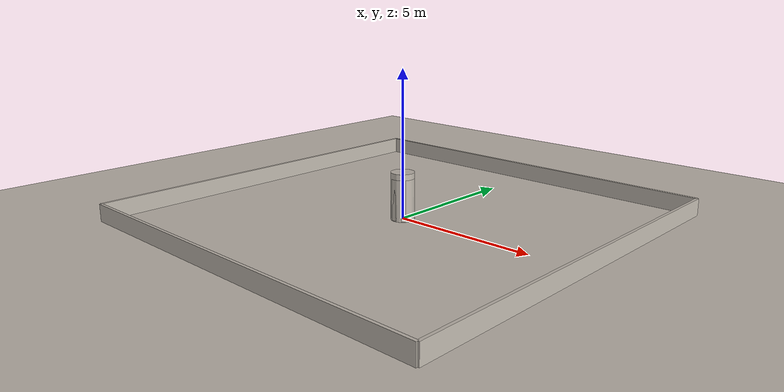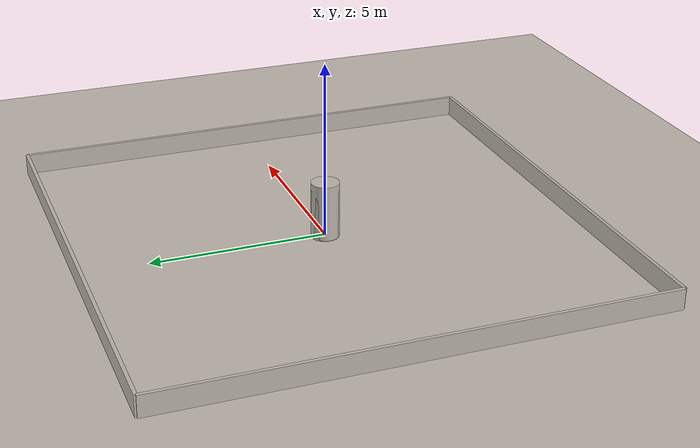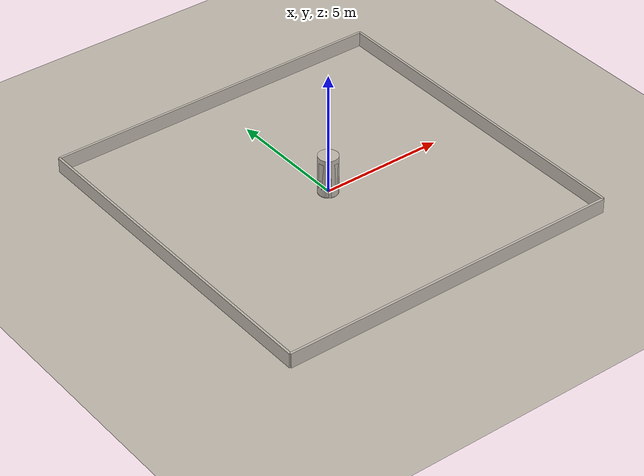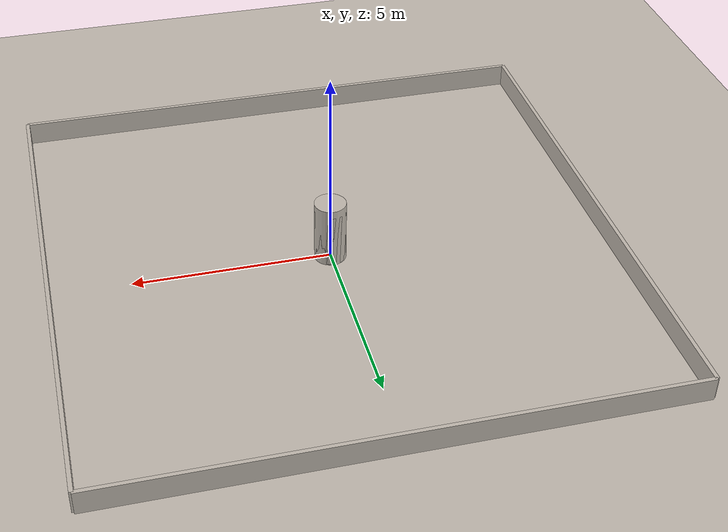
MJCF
<mujoco model="two_wheel_two_cams">
  <option timestep="0.002" gravity="0 0 -9.81" />
  <size nstack="300000" nuser_sensor="0" />
  <visual>
    <map znear="0.001" />
  </visual>
  <asset>
    <texture name="skybox" type="skybox" file="textures/skybox.png" />
    <texture name="texplane" type="2d" file="textures/ground.png" />
    <texture name="texwall" type="cube" file="textures/wall.png" />
    <texture name="texobs" type="cube" file="textures/obstacle.png" />
    <material name="matplane" texture="texplane" texrepeat="1 1" reflectance="0.0" texuniform="true" rgba="1 1 1 1" specular="0.05" />
    <material name="matgoal" rgba="0.2 0.85 0.2 1" />
    <!-- Texuniform=false lets the texture map onto the box faces rather than world planes -->
    <material name="matwall" texture="texwall" texrepeat="4 4" reflectance="0.0" texuniform="false" rgba="1 1 1 1" specular="0.05" />
    <material name="matrobot" rgba="0.2 0.4 0.8 1" />
    <material name="matwheel" rgba="0.1 0.1 0.1 1" />
    <!-- Texuniform=false ensures the texture wraps around the cylinder's circumference -->
    <material name="matobs" texture="texobs" texrepeat="1 1" reflectance="0.0" texuniform="false" rgba="1 1 1 1" specular="0.05" />
  </asset>
  <worldbody>
    <light name="light_top" pos="0 0 6" dir="0 0 -1" diffuse="0.3 0.3 0.3" specular="0.0 0.0 0.0" ambient="0.6 0.6 0.6" directional="true" castshadow="false"/>
    <light name="light_west" pos="-4 0 3" dir="1 0 -0.4" diffuse="0.1 0.1 0.1" specular="0.0 0.0 0.0" ambient="0.3 0.3 0.3" directional="true" castshadow="false"/>
    <light name="light_east" pos="4 0 3" dir="-1 0 -0.4" diffuse="0.1 0.1 0.1" specular="0.0 0.0 0.0" ambient="0.3 0.3 0.3" directional="true" castshadow="false"/>
    <geom name="floor" type="plane" size="20 20 0.1" pos="0 0 0" material="matplane" condim="3" friction="1.0 0.005 0.0001" contype="1" conaffinity="7" />
    <geom name="wall_n" type="box" size="7 0.05 0.3" pos="0 7 0.3" material="matwall" contype="1" conaffinity="7" />
    <geom name="wall_s" type="box" size="7 0.05 0.3" pos="0 -7 0.3" material="matwall" contype="1" conaffinity="7" />
    <geom name="wall_e" type="box" size="0.05 7 0.3" pos="7 0 0.3" material="matwall" contype="1" conaffinity="7" />
    <geom name="wall_w" type="box" size="0.05 7 0.3" pos="-7 0 0.3" material="matwall" contype="1" conaffinity="7" />
    <body name="obstacle0_body" pos="0 0 0.8">
      <inertial pos="0 0 0" mass="30" diaginertia="2 2 2" />
      <joint name="obstacle0_x" type="slide" axis="1 0 0" limited="true" range="-1e-6 1e-6" />
      <joint name="obstacle0_y" type="slide" axis="0 1 0" limited="true" range="-1e-6 1e-6" />
      <joint name="obstacle0_z" type="slide" axis="0 0 1" limited="true" range="-1e-6 1e-6" />
      <geom name="obstacle0" type="cylinder" size="0.4 0.8 0" pos="0 0 0" friction="8.0 0.5 0.1" material="matobs" contype="1" conaffinity="7" solref="0.001 1" solimp="0.98 0.995 0.0001" />
    </body>
    <body name="obstacle1_body" pos="0 0 0.8">
      <inertial pos="0 0 0" mass="30" diaginertia="2 2 2" />
      <joint name="obstacle1_x" type="slide" axis="1 0 0" limited="true" range="-1e-6 1e-6" />
      <joint name="obstacle1_y" type="slide" axis="0 1 0" limited="true" range="-1e-6 1e-6" />
      <joint name="obstacle1_z" type="slide" axis="0 0 1" limited="true" range="-1e-6 1e-6" />
      <geom name="obstacle1" type="cylinder" size="0.4 0.8 0" pos="0 0 0" friction="8.0 0.5 0.1" material="matobs" contype="1" conaffinity="7" solref="0.001 1" solimp="0.98 0.995 0.0001" />
    </body>
    <body name="obstacle2_body" pos="0 0 0.6">
      <inertial pos="0 0 0" mass="30" diaginertia="2 2 2" />
      <joint name="obstacle2_x" type="slide" axis="1 0 0" limited="true" range="-1e-6 1e-6" />
      <joint name="obstacle2_y" type="slide" axis="0 1 0" limited="true" range="-1e-6 1e-6" />
      <joint name="obstacle2_z" type="slide" axis="0 0 1" limited="true" range="-1e-6 1e-6" />
      <geom name="obstacle2" type="cylinder" size="0.4 0.8 0" pos="0 0 0" friction="8.0 0.5 0.1" material="matobs" contype="1" conaffinity="7" solref="0.001 1" solimp="0.98 0.995 0.0001" />
    </body>
    <body name="obstacle3_body" pos="0 0 0.8">
      <inertial pos="0 0 0" mass="30" diaginertia="2 2 2" />
      <joint name="obstacle3_x" type="slide" axis="1 0 0" limited="true" range="-1e-6 1e-6" />
      <joint name="obstacle3_y" type="slide" axis="0 1 0" limited="true" range="-1e-6 1e-6" />
      <joint name="obstacle3_z" type="slide" axis="0 0 1" limited="true" range="-1e-6 1e-6" />
      <geom name="obstacle3" type="cylinder" size="0.4 0.8 0" pos="0 0 0" friction="8.0 0.5 0.1" material="matobs" contype="1" conaffinity="7" solref="0.001 1" solimp="0.98 0.995 0.0001" />
    </body>
    <body name="obstacle4_body" pos="0 0 0.8">
      <inertial pos="0 0 0" mass="30" diaginertia="2 2 2" />
      <joint name="obstacle4_x" type="slide" axis="1 0 0" limited="true" range="-1e-6 1e-6" />
      <joint name="obstacle4_y" type="slide" axis="0 1 0" limited="true" range="-1e-6 1e-6" />
      <joint name="obstacle4_z" type="slide" axis="0 0 1" limited="true" range="-1e-6 1e-6" />
      <geom name="obstacle4" type="cylinder" size="0.4 0.8 0" pos="0 0 0" friction="8.0 0.5 0.1" material="matobs" contype="1" conaffinity="7" solref="0.001 1" solimp="0.98 0.995 0.0001" />
    </body>
    <body name="obstacle5_body" pos="0 0 0.8">
      <inertial pos="0 0 0" mass="30" diaginertia="2 2 2" />
      <joint name="obstacle5_x" type="slide" axis="1 0 0" limited="true" range="-1e-6 1e-6" />
      <joint name="obstacle5_y" type="slide" axis="0 1 0" limited="true" range="-1e-6 1e-6" />
      <joint name="obstacle5_z" type="slide" axis="0 0 1" limited="true" range="-1e-6 1e-6" />
      <geom name="obstacle5" type="cylinder" size="0.4 0.8 0" pos="0 0 0" friction="8.0 0.5 0.1" material="matobs" contype="1" conaffinity="7" solref="0.001 1" solimp="0.98 0.995 0.0001" />
    </body>
    <body name="obstacle6_body" pos="0 0 0.8">
      <inertial pos="0 0 0" mass="30" diaginertia="2 2 2" />
      <joint name="obstacle6_x" type="slide" axis="1 0 0" limited="true" range="-1e-6 1e-6" />
      <joint name="obstacle6_y" type="slide" axis="0 1 0" limited="true" range="-1e-6 1e-6" />
      <joint name="obstacle6_z" type="slide" axis="0 0 1" limited="true" range="-1e-6 1e-6" />
      <geom name="obstacle6" type="cylinder" size="0.4 0.8 0" pos="0 0 0" friction="8.0 0.5 0.1" material="matobs" contype="1" conaffinity="7" solref="0.001 1" solimp="0.98 0.995 0.0001" />
    </body>
    <body name="obstacle7_body" pos="0 0 0.6">
      <inertial pos="0 0 0" mass="30" diaginertia="2 2 2" />
      <joint name="obstacle7_x" type="slide" axis="1 0 0" limited="true" range="-1e-6 1e-6" />
      <joint name="obstacle7_y" type="slide" axis="0 1 0" limited="true" range="-1e-6 1e-6" />
      <joint name="obstacle7_z" type="slide" axis="0 0 1" limited="true" range="-1e-6 1e-6" />
      <geom name="obstacle7" type="cylinder" size="0.4 0.8 0" pos="0 0 0" friction="8.0 0.5 0.1" material="matobs" contype="1" conaffinity="7" solref="0.001 1" solimp="0.98 0.995 0.0001" />
    </body>
    <body name="obstacle8_body" pos="0 0 0.8">
      <inertial pos="0 0 0" mass="30" diaginertia="2 2 2" />
      <joint name="obstacle8_x" type="slide" axis="1 0 0" limited="true" range="-1e-6 1e-6" />
      <joint name="obstacle8_y" type="slide" axis="0 1 0" limited="true" range="-1e-6 1e-6" />
      <joint name="obstacle8_z" type="slide" axis="0 0 1" limited="true" range="-1e-6 1e-6" />
      <geom name="obstacle8" type="cylinder" size="0.4 0.8 0" pos="0 0 0" friction="8.0 0.5 0.1" material="matobs" contype="1" conaffinity="7" solref="0.001 1" solimp="0.98 0.995 0.0001" />
    </body>
    <body name="obstacle9_body" pos="0 0 0.8">
      <inertial pos="0 0 0" mass="30" diaginertia="2 2 2" />
      <joint name="obstacle9_x" type="slide" axis="1 0 0" limited="true" range="-1e-6 1e-6" />
      <joint name="obstacle9_y" type="slide" axis="0 1 0" limited="true" range="-1e-6 1e-6" />
      <joint name="obstacle9_z" type="slide" axis="0 0 1" limited="true" range="-1e-6 1e-6" />
      <geom name="obstacle9" type="cylinder" size="0.4 0.8 0" pos="0 0 0" friction="8.0 0.5 0.1" material="matobs" contype="1" conaffinity="7" solref="0.001 1" solimp="0.98 0.995 0.0001" />
    </body>
    <body name="obstacle10_body" pos="0 0 0.8">
      <inertial pos="0 0 0" mass="30" diaginertia="2 2 2" />
      <joint name="obstacle10_x" type="slide" axis="1 0 0" limited="true" range="-1e-6 1e-6" />
      <joint name="obstacle10_y" type="slide" axis="0 1 0" limited="true" range="-1e-6 1e-6" />
      <joint name="obstacle10_z" type="slide" axis="0 0 1" limited="true" range="-1e-6 1e-6" />
      <geom name="obstacle10" type="cylinder" size="0.4 0.8 0" pos="0 0 0" friction="8.0 0.5 0.1" material="matobs" contype="1" conaffinity="7" solref="0.001 1" solimp="0.98 0.995 0.0001" />
    </body>
    <body name="obstacle11_body" pos="0 0 0.8">
      <inertial pos="0 0 0" mass="30" diaginertia="2 2 2" />
      <joint name="obstacle11_x" type="slide" axis="1 0 0" limited="true" range="-1e-6 1e-6" />
      <joint name="obstacle11_y" type="slide" axis="0 1 0" limited="true" range="-1e-6 1e-6" />
      <joint name="obstacle11_z" type="slide" axis="0 0 1" limited="true" range="-1e-6 1e-6" />
      <geom name="obstacle11" type="cylinder" size="0.4 0.8 0" pos="0 0 0" friction="8.0 0.5 0.1" material="matobs" contype="1" conaffinity="7" solref="0.001 1" solimp="0.98 0.995 0.0001" />
    </body>
    <body name="obstacle12_body" pos="0 0 0.6">
      <inertial pos="0 0 0" mass="30" diaginertia="2 2 2" />
      <joint name="obstacle12_x" type="slide" axis="1 0 0" limited="true" range="-1e-6 1e-6" />
      <joint name="obstacle12_y" type="slide" axis="0 1 0" limited="true" range="-1e-6 1e-6" />
      <joint name="obstacle12_z" type="slide" axis="0 0 1" limited="true" range="-1e-6 1e-6" />
      <geom name="obstacle12" type="cylinder" size="0.4 0.8 0" pos="0 0 0" friction="8.0 0.5 0.1" material="matobs" contype="1" conaffinity="7" solref="0.001 1" solimp="0.98 0.995 0.0001" />
    </body>
    <body name="obstacle13_body" pos="0 0 0.8">
      <inertial pos="0 0 0" mass="30" diaginertia="2 2 2" />
      <joint name="obstacle13_x" type="slide" axis="1 0 0" limited="true" range="-1e-6 1e-6" />
      <joint name="obstacle13_y" type="slide" axis="0 1 0" limited="true" range="-1e-6 1e-6" />
      <joint name="obstacle13_z" type="slide" axis="0 0 1" limited="true" range="-1e-6 1e-6" />
      <geom name="obstacle13" type="cylinder" size="0.4 0.8 0" pos="0 0 0" friction="8.0 0.5 0.1" material="matobs" contype="1" conaffinity="7" solref="0.001 1" solimp="0.98 0.995 0.0001" />
    </body>
    <body name="obstacle14_body" pos="0 0 0.8">
      <inertial pos="0 0 0" mass="30" diaginertia="2 2 2" />
      <joint name="obstacle14_x" type="slide" axis="1 0 0" limited="true" range="-1e-6 1e-6" />
      <joint name="obstacle14_y" type="slide" axis="0 1 0" limited="true" range="-1e-6 1e-6" />
      <joint name="obstacle14_z" type="slide" axis="0 0 1" limited="true" range="-1e-6 1e-6" />
      <geom name="obstacle14" type="cylinder" size="0.4 0.8 0" pos="0 0 0" friction="8.0 0.5 0.1" material="matobs" contype="1" conaffinity="7" solref="0.001 1" solimp="0.98 0.995 0.0001" />
    </body>
    <body name="obstacle15_body" pos="0 0 0.8">
      <inertial pos="0 0 0" mass="30" diaginertia="2 2 2" />
      <joint name="obstacle15_x" type="slide" axis="1 0 0" limited="true" range="-1e-6 1e-6" />
      <joint name="obstacle15_y" type="slide" axis="0 1 0" limited="true" range="-1e-6 1e-6" />
      <joint name="obstacle15_z" type="slide" axis="0 0 1" limited="true" range="-1e-6 1e-6" />
      <geom name="obstacle15" type="cylinder" size="0.4 0.8 0" pos="0 0 0" friction="8.0 0.5 0.1" material="matobs" contype="1" conaffinity="7" solref="0.001 1" solimp="0.98 0.995 0.0001" />
    </body>
    <body name="obstacle16_body" pos="0 0 0.8">
      <inertial pos="0 0 0" mass="30" diaginertia="2 2 2" />
      <joint name="obstacle16_x" type="slide" axis="1 0 0" limited="true" range="-1e-6 1e-6" />
      <joint name="obstacle16_y" type="slide" axis="0 1 0" limited="true" range="-1e-6 1e-6" />
      <joint name="obstacle16_z" type="slide" axis="0 0 1" limited="true" range="-1e-6 1e-6" />
      <geom name="obstacle16" type="cylinder" size="0.4 0.8 0" pos="0 0 0" friction="8.0 0.5 0.1" material="matobs" contype="1" conaffinity="7" solref="0.001 1" solimp="0.98 0.995 0.0001" />
    </body>
    <body name="obstacle17_body" pos="0 0 0.6">
      <inertial pos="0 0 0" mass="30" diaginertia="2 2 2" />
      <joint name="obstacle17_x" type="slide" axis="1 0 0" limited="true" range="-1e-6 1e-6" />
      <joint name="obstacle17_y" type="slide" axis="0 1 0" limited="true" range="-1e-6 1e-6" />
      <joint name="obstacle17_z" type="slide" axis="0 0 1" limited="true" range="-1e-6 1e-6" />
      <geom name="obstacle17" type="cylinder" size="0.4 0.8 0" pos="0 0 0" friction="8.0 0.5 0.1" material="matobs" contype="1" conaffinity="7" solref="0.001 1" solimp="0.98 0.995 0.0001" />
    </body>
    <body name="obstacle18_body" pos="0 0 0.8">
      <inertial pos="0 0 0" mass="30" diaginertia="2 2 2" />
      <joint name="obstacle18_x" type="slide" axis="1 0 0" limited="true" range="-1e-6 1e-6" />
      <joint name="obstacle18_y" type="slide" axis="0 1 0" limited="true" range="-1e-6 1e-6" />
      <joint name="obstacle18_z" type="slide" axis="0 0 1" limited="true" range="-1e-6 1e-6" />
      <geom name="obstacle18" type="cylinder" size="0.4 0.8 0" pos="0 0 0" friction="8.0 0.5 0.1" material="matobs" contype="1" conaffinity="7" solref="0.001 1" solimp="0.98 0.995 0.0001" />
    </body>
    <body name="obstacle19_body" pos="0 0 0.8">
      <inertial pos="0 0 0" mass="30" diaginertia="2 2 2" />
      <joint name="obstacle19_x" type="slide" axis="1 0 0" limited="true" range="-1e-6 1e-6" />
      <joint name="obstacle19_y" type="slide" axis="0 1 0" limited="true" range="-1e-6 1e-6" />
      <joint name="obstacle19_z" type="slide" axis="0 0 1" limited="true" range="-1e-6 1e-6" />
      <geom name="obstacle19" type="cylinder" size="0.4 0.8 0" pos="0 0 0" friction="8.0 0.5 0.1" material="matobs" contype="1" conaffinity="7" solref="0.001 1" solimp="0.98 0.995 0.0001" />
    </body>
    <site name="goal_site" pos="0 0 0.25" size="0.25" rgba="1.0 1.0 1.0 1.0" />
  </worldbody>
  <include file="robot_geometry.xml"/>
</mujoco>

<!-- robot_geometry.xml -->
<mujocoinclude>
<worldbody>
<!-- SI units; +x forward, +y left, +z up. Diagram (x,y,z) maps to (y,-x,z). -->
<body name="base" pos="0 0 0.1">
<freejoint name="base_free"/>
<!-- Chassis envelope and mass are provisional; top deck is at 130 mm. -->
<geom name="base_geom" type="box" size="0.145 0.085 0.03" material="matrobot" mass="2" group="1" contype="2" conaffinity="1"/>
<!-- Tire drawing: diameter 67.50 mm, tread width 26.50 mm; nominal label is 65 mm. -->
<body name="left_wheel" pos="0.124 0.108 -0.06625">
<joint name="left_hinge" axis="0 1 0" damping="0.001" armature="0.002"/>
<geom name="left_wheel_geom" type="cylinder" size="0.03375 0.01325" euler="90 0 0" material="matwheel" mass="0.1" group="1" friction="1 0.005 0.0001" contype="4" conaffinity="1"/>
</body>
<body name="right_wheel" pos="0.124 -0.108 -0.06625">
<joint name="right_hinge" axis="0 1 0" damping="0.001" armature="0.002"/>
<geom name="right_wheel_geom" type="cylinder" size="0.03375 0.01325" euler="90 0 0" material="matwheel" mass="0.1" group="1" friction="1 0.005 0.0001" contype="4" conaffinity="1"/>
</body>
<body name="rear_left_wheel" pos="-0.124 0.108 -0.06625">
<joint name="rear_left_hinge" axis="0 1 0" damping="0.001" armature="0.002"/>
<geom name="rear_left_wheel_geom" type="cylinder" size="0.03375 0.01325" euler="90 0 0" material="matwheel" mass="0.1" group="1" friction="1 0.005 0.0001" contype="4" conaffinity="1"/>
</body>
<body name="rear_right_wheel" pos="-0.124 -0.108 -0.06625">
<joint name="rear_right_hinge" axis="0 1 0" damping="0.001" armature="0.002"/>
<geom name="rear_right_wheel_geom" type="cylinder" size="0.03375 0.01325" euler="90 0 0" material="matwheel" mass="0.1" group="1" friction="1 0.005 0.0001" contype="4" conaffinity="1"/>
</body>
<camera name="cam_left" pos="0.103 0.035 0.065" xyaxes="0.4959134149 -0.8683719738 0.0000000000 0.0756836044 0.0432217020 0.9961946981" fovy="42.61"/>
<camera name="cam_right" pos="0.103 -0.035 0.065" xyaxes="-0.4959134149 -0.8683719738 0.0000000000 0.0756836044 -0.0432217020 0.9961946981" fovy="42.61"/>
<site name="lidar" pos="0 0 0.095" size="0.01" rgba="1 0.7 0 1"/>
</body>
</worldbody>
<!-- Yahboom L-type 520, 12 V, 40:1: 300 RPM output, 4.4 kgf cm rated torque.
     Velocity-loop gain is provisional. Stall torque is not a continuous limit. -->
<actuator>
<velocity name="left_motor" joint="left_hinge" kv="2" ctrlrange="-31.4159265359 31.4159265359" forcerange="-0.4314926 0.4314926"/>
<velocity name="right_motor" joint="right_hinge" kv="2" ctrlrange="-31.4159265359 31.4159265359" forcerange="-0.4314926 0.4314926"/>
<velocity name="rear_left_motor" joint="rear_left_hinge" kv="2" ctrlrange="-31.4159265359 31.4159265359" forcerange="-0.4314926 0.4314926"/>
<velocity name="rear_right_motor" joint="rear_right_hinge" kv="2" ctrlrange="-31.4159265359 31.4159265359" forcerange="-0.4314926 0.4314926"/>
</actuator>
</mujocoinclude>
